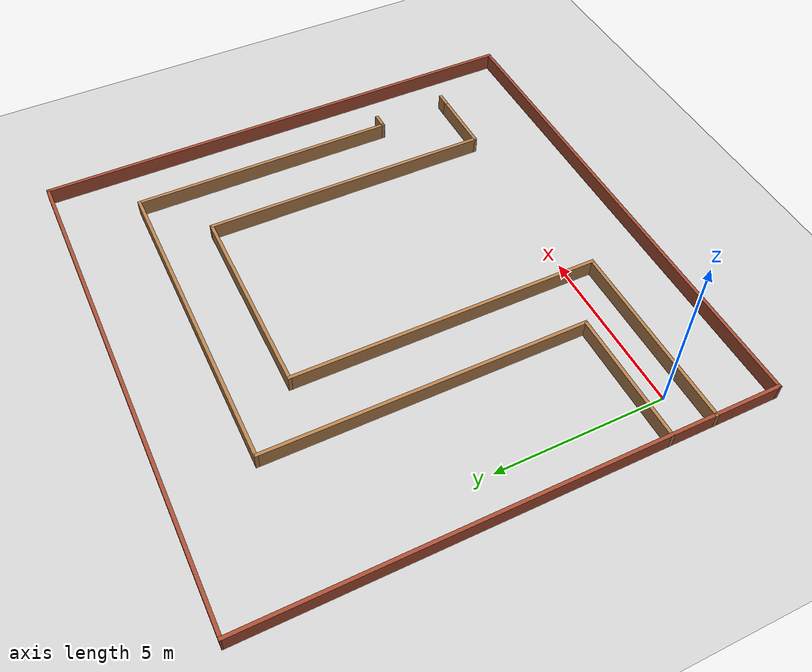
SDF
<sdf version="1.6">
 <world name="default">
  <light name="sun" type="directional">
   <pose>0 0 10 0 -0 0</pose>
   <diffuse>0.8 0.8 0.8 1</diffuse>
   <specular>0.2 0.2 0.2 1</specular>
   <attenuation>
    <range>1000</range>
    <constant>0.9</constant>
    <linear>0.01</linear>
    <quadratic>0.001</quadratic>
   </attenuation>
   <direction>-0.5 0.1 -0.9</direction>
  </light>
  <model name="ground_plane">
   <static>1</static>
   <link name="link">
    <collision name="collision">
     <geometry><plane><normal>0 0 1</normal><size>100 100</size></plane></geometry>
     <surface>
      <contact><collide_bitmask>65535</collide_bitmask></contact>
      <friction><ode><mu>100</mu><mu2>50</mu2></ode></friction>
     </surface>
    </collision>
    <visual name="visual">
     <cast_shadows>0</cast_shadows>
     <geometry><plane><normal>0 0 1</normal><size>100 100</size></plane></geometry>
     <material>
      <script><uri>file://media/materials/scripts/gazebo.material</uri><name>Gazebo/Grey</name></script>
     </material>
    </visual>
   </link>
  </model>
  <gravity>0 0 -9.8</gravity>
  <magnetic_field>6e-06 2.3e-05 -4.2e-05</magnetic_field>
  <atmosphere type="adiabatic"/>
  <physics name="default_physics" default="0" type="ode">
   <max_step_size>0.001</max_step_size>
   <real_time_factor>1</real_time_factor>
   <real_time_update_rate>1000</real_time_update_rate>
  </physics>
  <scene><ambient>0.4 0.4 0.4 1</ambient><background>0.7 0.7 0.7 1</background><shadows>1</shadows></scene>
  <audio><device>default</device></audio>
  <spherical_coordinates>
   <surface_model>EARTH_WGS84</surface_model>
   <latitude_deg>0</latitude_deg>
   <longitude_deg>0</longitude_deg>
   <elevation>0</elevation>
   <heading_deg>0</heading_deg>
  </spherical_coordinates>
  <model name="new_world">
   <pose>6.2912 4.8678 0 0 0 -1.57463</pose>
   <link name="Wall_10">
    <collision name="Wall_10_Collision">
     <geometry><box><size>15 0.1 0.5</size></box></geometry>
     <pose>0 0 0.25 0 -0 0</pose>
    </collision>
    <visual name="Wall_10_Visual">
     <pose>0 0 0.25 0 -0 0</pose>
     <geometry><box><size>15 0.1 0.5</size></box></geometry>
     <material>
      <script><uri>file://media/materials/scripts/gazebo.material</uri><name>Gazebo/Bricks</name></script>
      <ambient>1 1 1 1</ambient>
     </material>
     <meta><layer>0</layer></meta>
    </visual>
    <pose>0.013558 7.45195 0 0 -0 3.14159</pose>
   </link>
   <link name="Wall_17">
    <collision name="Wall_17_Collision">
     <geometry><box><size>5.69998 0.1 0.5</size></box></geometry>
     <pose>0 0 0.25 0 -0 0</pose>
    </collision>
    <visual name="Wall_17_Visual">
     <pose>0 0 0.25 0 -0 0</pose>
     <geometry><box><size>5.69998 0.1 0.5</size></box></geometry>
     <material>
      <script><uri>file://media/materials/scripts/gazebo.material</uri><name>Gazebo/Wood</name></script>
      <ambient>1 1 1 1</ambient>
     </material>
     <meta><layer>0</layer></meta>
    </visual>
    <pose>5.51856 -4.65205 0 0 -0 1.5708</pose>
   </link>
   <link name="Wall_18">
    <collision name="Wall_18_Collision">
     <geometry><box><size>9.19978 0.1 0.5</size></box></geometry>
     <pose>0 0 0.25 0 -0 0</pose>
    </collision>
    <visual name="Wall_18_Visual">
     <pose>0 0 0.25 0 -0 0</pose>
     <geometry><box><size>9.19978 0.1 0.5</size></box></geometry>
     <material>
      <script><uri>file://media/materials/scripts/gazebo.material</uri><name>Gazebo/Wood</name></script>
      <ambient>1 1 1 1</ambient>
     </material>
     <meta><layer>0</layer></meta>
    </visual>
    <pose>0.968558 -1.85204 0 0 -0 3.14159</pose>
   </link>
   <link name="Wall_19">
    <collision name="Wall_19_Collision">
     <geometry><box><size>5.94998 0.1 0.5</size></box></geometry>
     <pose>0 0 0.25 0 -0 0</pose>
    </collision>
    <visual name="Wall_19_Visual">
     <pose>0 0 0.25 0 -0 0</pose>
     <geometry><box><size>5.94998 0.1 0.5</size></box></geometry>
     <material>
      <script><uri>file://media/materials/scripts/gazebo.material</uri><name>Gazebo/Wood</name></script>
      <ambient>1 1 1 1</ambient>
     </material>
     <meta><layer>0</layer></meta>
    </visual>
    <pose>-3.58144 1.07296 0 0 -0 1.5708</pose>
   </link>
   <link name="Wall_20">
    <collision name="Wall_20_Collision">
     <geometry><box><size>8.70022 0.1 0.5</size></box></geometry>
     <pose>0 0 0.25 0 -0 0</pose>
    </collision>
    <visual name="Wall_20_Visual">
     <pose>0 0 0.25 0 -0 0</pose>
     <geometry><box><size>8.70022 0.1 0.5</size></box></geometry>
     <material>
      <script><uri>file://media/materials/scripts/gazebo.material</uri><name>Gazebo/Wood</name></script>
      <ambient>1 1 1 1</ambient>
     </material>
     <meta><layer>0</layer></meta>
    </visual>
    <pose>0.718558 3.99796 0 0 -0 0</pose>
   </link>
   <link name="Wall_21">
    <collision name="Wall_21_Collision">
     <geometry><box><size>1.99 0.1 0.5</size></box></geometry>
     <pose>0 0 0.25 0 -0 0</pose>
    </collision>
    <visual name="Wall_21_Visual">
     <pose>0 0 0.25 0 -0 0</pose>
     <geometry><box><size>1.99 0.1 0.5</size></box></geometry>
     <material>
      <script><uri>file://media/materials/scripts/gazebo.material</uri><name>Gazebo/Wood</name></script>
      <ambient>1 1 1 1</ambient>
     </material>
     <meta><layer>0</layer></meta>
    </visual>
    <pose>5.01856 4.94296 0 0 -0 1.5708</pose>
   </link>
   <link name="Wall_25">
    <collision name="Wall_25_Collision">
     <geometry><box><size>3.94998 0.1 0.5</size></box></geometry>
     <pose>0 0 0.25 0 -0 0</pose>
    </collision>
    <visual name="Wall_25_Visual">
     <pose>0 0 0.25 0 -0 0</pose>
     <geometry><box><size>3.94998 0.1 0.5</size></box></geometry>
     <material>
      <script><uri>file://media/materials/scripts/gazebo.material</uri><name>Gazebo/Wood</name></script>
      <ambient>1 1 1 1</ambient>
     </material>
     <meta><layer>0</layer></meta>
    </visual>
    <pose>4.18356 -5.52705 0 0 -0 1.5708</pose>
   </link>
   <link name="Wall_26">
    <collision name="Wall_26_Collision">
     <geometry><box><size>9.44981 0.1 0.5</size></box></geometry>
     <pose>0 0 0.25 0 -0 0</pose>
    </collision>
    <visual name="Wall_26_Visual">
     <pose>0 0 0.25 0 -0 0</pose>
     <geometry><box><size>9.44981 0.1 0.5</size></box></geometry>
     <material>
      <script><uri>file://media/materials/scripts/gazebo.material</uri><name>Gazebo/Wood</name></script>
      <ambient>1 1 1 1</ambient>
     </material>
     <meta><layer>0</layer></meta>
    </visual>
    <pose>-0.491442 -3.60204 0 0 -0 3.14159</pose>
   </link>
   <link name="Wall_27">
    <collision name="Wall_27_Collision">
     <geometry><box><size>9.52091 0.1 0.5</size></box></geometry>
     <pose>0 0 0.25 0 -0 0</pose>
    </collision>
    <visual name="Wall_27_Visual">
     <pose>0 0 0.25 0 -0 0</pose>
     <geometry><box><size>9.52091 0.1 0.5</size></box></geometry>
     <material>
      <script><uri>file://media/materials/scripts/gazebo.material</uri><name>Gazebo/Wood</name></script>
      <ambient>1 1 1 1</ambient>
     </material>
     <meta><layer>0</layer></meta>
    </visual>
    <pose>-5.16758 1.10841 0 0 -0 1.57104</pose>
   </link>
   <link name="Wall_28">
    <collision name="Wall_28_Collision">
     <geometry><box><size>8 0.1 0.5</size></box></geometry>
     <pose>0 0 0.25 0 -0 0</pose>
    </collision>
    <visual name="Wall_28_Visual">
     <pose>0 0 0.25 0 -0 0</pose>
     <geometry><box><size>8 0.1 0.5</size></box></geometry>
     <material>
      <script><uri>file://media/materials/scripts/gazebo.material</uri><name>Gazebo/Wood</name></script>
      <ambient>1 1 1 1</ambient>
     </material>
     <meta><layer>0</layer></meta>
    </visual>
    <pose>-1.21872 5.81887 0 0 -0 0</pose>
   </link>
   <link name="Wall_29">
    <collision name="Wall_29_Collision">
     <geometry><box><size>0.5 0.1 0.5</size></box></geometry>
     <pose>0 0 0.25 0 -0 0</pose>
    </collision>
    <visual name="Wall_29_Visual">
     <pose>0 0 0.25 0 -0 0</pose>
     <geometry><box><size>0.5 0.1 0.5</size></box></geometry>
     <material>
      <script><uri>file://media/materials/scripts/gazebo.material</uri><name>Gazebo/Wood</name></script>
      <ambient>1 1 1 1</ambient>
     </material>
     <meta><layer>0</layer></meta>
    </visual>
    <pose>2.73128 6.01887 0 0 -0 1.5708</pose>
   </link>
   <link name="Wall_31">
    <collision name="Wall_31_Collision">
     <geometry><box><size>0.450435 0.1 0.5</size></box></geometry>
     <pose>0 0 0.25 0 -0 0</pose>
    </collision>
    <visual name="Wall_31_Visual">
     <pose>0 0 0.25 0 -0 0</pose>
     <geometry><box><size>0.450435 0.1 0.5</size></box></geometry>
     <material>
      <script><uri>file://media/materials/scripts/gazebo.material</uri><name>Gazebo/Wood</name></script>
      <ambient>1 1 1 1</ambient>
     </material>
     <meta><layer>0</layer></meta>
    </visual>
    <pose>5.01856 6.06295 0 0 -0 1.5708</pose>
   </link>
   <link name="Wall_4">
    <collision name="Wall_4_Collision">
     <geometry><box><size>15 0.1 0.5</size></box></geometry>
     <pose>0 0 0.25 0 -0 0</pose>
    </collision>
    <visual name="Wall_4_Visual">
     <pose>0 0 0.25 0 -0 0</pose>
     <geometry><box><size>15 0.1 0.5</size></box></geometry>
     <material>
      <script><uri>file://media/materials/scripts/gazebo.material</uri><name>Gazebo/Bricks</name></script>
      <ambient>1 1 1 1</ambient>
     </material>
     <meta><layer>0</layer></meta>
    </visual>
    <pose>-7.44996 0.001956 0 0 -0 -1.56898</pose>
   </link>
   <link name="Wall_6">
    <collision name="Wall_6_Collision">
     <geometry><box><size>15 0.1 0.5</size></box></geometry>
     <pose>0 0 0.25 0 -0 0</pose>
    </collision>
    <visual name="Wall_6_Visual">
     <pose>0 0 0.25 0 -0 0</pose>
     <geometry><box><size>15 0.1 0.5</size></box></geometry>
     <material>
      <script><uri>file://media/materials/scripts/gazebo.material</uri><name>Gazebo/Bricks</name></script>
      <ambient>1 1 1 1</ambient>
     </material>
     <meta><layer>0</layer></meta>
    </visual>
    <pose>0.013558 -7.44804 0 0 -0 0</pose>
   </link>
   <link name="Wall_8">
    <collision name="Wall_8_Collision">
     <geometry><box><size>15 0.1 0.5</size></box></geometry>
     <pose>0 0 0.25 0 -0 0</pose>
    </collision>
    <visual name="Wall_8_Visual">
     <pose>0 0 0.25 0 -0 0</pose>
     <geometry><box><size>15 0.1 0.5</size></box></geometry>
     <material>
      <script><uri>file://media/materials/scripts/gazebo.material</uri><name>Gazebo/Bricks</name></script>
      <ambient>1 1 1 1</ambient>
     </material>
     <meta><layer>0</layer></meta>
    </visual>
    <pose>7.46356 0.001955 0 0 -0 1.5708</pose>
   </link>
   <static>1</static>
  </model>
 </world>
</sdf>
